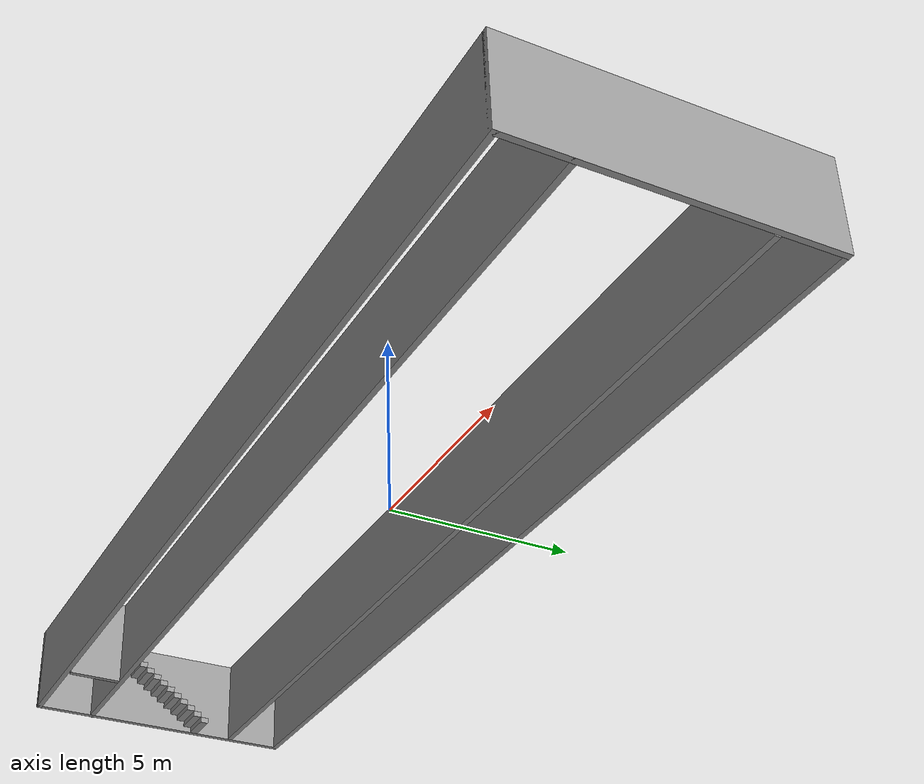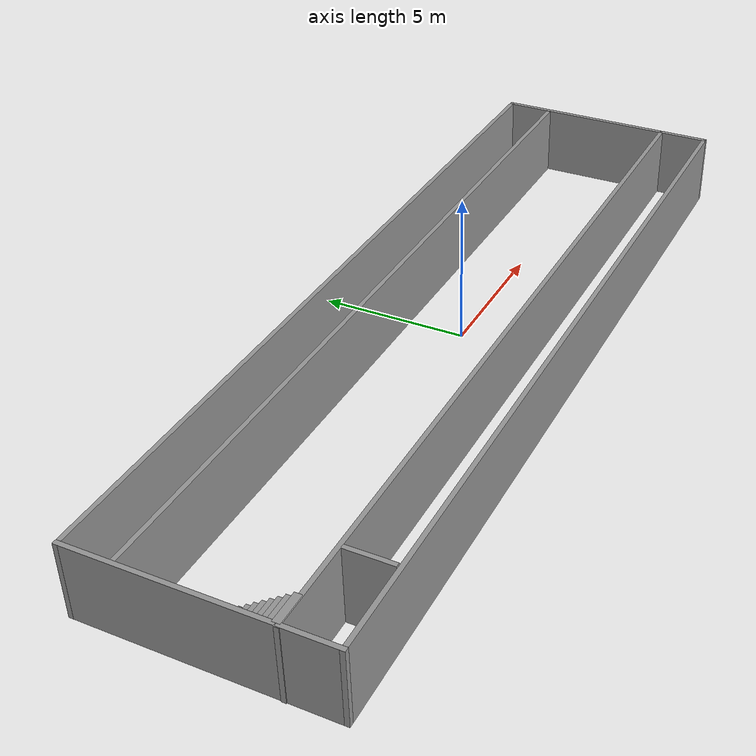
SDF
<?xml version='1.0'?>
<sdf version='1.7'>
  <model name='school_bone'>
    <pose>-1.46985 -0.354274 0 0 -0 0</pose>
    <link name='Stairs_0'>
      <visual name='Stairs_0_Visual_0'>
        <pose>-13.3985 1.08652 0.083333 0 -0 0</pose>
        <geometry>
          <box>
            <size>1 0.233333 0.166667</size>
          </box>
        </geometry>
        <material>
          <script>
            <uri>file://media/materials/scripts/gazebo.material</uri>
            <name>Gazebo/Grey</name>
          </script>
          <ambient>1 1 1 1</ambient>
        </material>
        <meta>
          <layer>0</layer>
        </meta>
      </visual>
      <collision name='Stairs_0_Collision_0'>
        <geometry>
          <box>
            <size>1 0.233333 0.166667</size>
          </box>
        </geometry>
        <pose>-13.3985 1.08652 0.083333 0 -0 0</pose>
      </collision>
      <visual name='Stairs_0_Visual_1'>
        <pose>-13.3985 0.853188 0.25 0 -0 0</pose>
        <geometry>
          <box>
            <size>1 0.233333 0.166667</size>
          </box>
        </geometry>
        <material>
          <script>
            <uri>file://media/materials/scripts/gazebo.material</uri>
            <name>Gazebo/Grey</name>
          </script>
          <ambient>1 1 1 1</ambient>
        </material>
        <meta>
          <layer>0</layer>
        </meta>
      </visual>
      <collision name='Stairs_0_Collision_1'>
        <geometry>
          <box>
            <size>1 0.233333 0.166667</size>
          </box>
        </geometry>
        <pose>-13.3985 0.853188 0.25 0 -0 0</pose>
      </collision>
      <visual name='Stairs_0_Visual_2'>
        <pose>-13.3985 0.619855 0.416667 0 -0 0</pose>
        <geometry>
          <box>
            <size>1 0.233333 0.166667</size>
          </box>
        </geometry>
        <material>
          <script>
            <uri>file://media/materials/scripts/gazebo.material</uri>
            <name>Gazebo/Grey</name>
          </script>
          <ambient>1 1 1 1</ambient>
        </material>
        <meta>
          <layer>0</layer>
        </meta>
      </visual>
      <collision name='Stairs_0_Collision_2'>
        <geometry>
          <box>
            <size>1 0.233333 0.166667</size>
          </box>
        </geometry>
        <pose>-13.3985 0.619855 0.416667 0 -0 0</pose>
      </collision>
      <visual name='Stairs_0_Visual_3'>
        <pose>-13.3985 0.386522 0.583333 0 -0 0</pose>
        <geometry>
          <box>
            <size>1 0.233333 0.166667</size>
          </box>
        </geometry>
        <material>
          <script>
            <uri>file://media/materials/scripts/gazebo.material</uri>
            <name>Gazebo/Grey</name>
          </script>
          <ambient>1 1 1 1</ambient>
        </material>
        <meta>
          <layer>0</layer>
        </meta>
      </visual>
      <collision name='Stairs_0_Collision_3'>
        <geometry>
          <box>
            <size>1 0.233333 0.166667</size>
          </box>
        </geometry>
        <pose>-13.3985 0.386522 0.583333 0 -0 0</pose>
      </collision>
      <visual name='Stairs_0_Visual_4'>
        <pose>-13.3985 0.153188 0.75 0 -0 0</pose>
        <geometry>
          <box>
            <size>1 0.233333 0.166667</size>
          </box>
        </geometry>
        <material>
          <script>
            <uri>file://media/materials/scripts/gazebo.material</uri>
            <name>Gazebo/Grey</name>
          </script>
          <ambient>1 1 1 1</ambient>
        </material>
        <meta>
          <layer>0</layer>
        </meta>
      </visual>
      <collision name='Stairs_0_Collision_4'>
        <geometry>
          <box>
            <size>1 0.233333 0.166667</size>
          </box>
        </geometry>
        <pose>-13.3985 0.153188 0.75 0 -0 0</pose>
      </collision>
      <visual name='Stairs_0_Visual_5'>
        <pose>-13.3985 -0.080145 0.916667 0 -0 0</pose>
        <geometry>
          <box>
            <size>1 0.233333 0.166667</size>
          </box>
        </geometry>
        <material>
          <script>
            <uri>file://media/materials/scripts/gazebo.material</uri>
            <name>Gazebo/Grey</name>
          </script>
          <ambient>1 1 1 1</ambient>
        </material>
        <meta>
          <layer>0</layer>
        </meta>
      </visual>
      <collision name='Stairs_0_Collision_5'>
        <geometry>
          <box>
            <size>1 0.233333 0.166667</size>
          </box>
        </geometry>
        <pose>-13.3985 -0.080145 0.916667 0 -0 0</pose>
      </collision>
      <visual name='Stairs_0_Visual_6'>
        <pose>-13.3985 -0.313478 1.08333 0 -0 0</pose>
        <geometry>
          <box>
            <size>1 0.233333 0.166667</size>
          </box>
        </geometry>
        <material>
          <script>
            <uri>file://media/materials/scripts/gazebo.material</uri>
            <name>Gazebo/Grey</name>
          </script>
          <ambient>1 1 1 1</ambient>
        </material>
        <meta>
          <layer>0</layer>
        </meta>
      </visual>
      <collision name='Stairs_0_Collision_6'>
        <geometry>
          <box>
            <size>1 0.233333 0.166667</size>
          </box>
        </geometry>
        <pose>-13.3985 -0.313478 1.08333 0 -0 0</pose>
      </collision>
      <visual name='Stairs_0_Visual_7'>
        <pose>-13.3985 -0.546812 1.25 0 -0 0</pose>
        <geometry>
          <box>
            <size>1 0.233333 0.166667</size>
          </box>
        </geometry>
        <material>
          <script>
            <uri>file://media/materials/scripts/gazebo.material</uri>
            <name>Gazebo/Grey</name>
          </script>
          <ambient>1 1 1 1</ambient>
        </material>
        <meta>
          <layer>0</layer>
        </meta>
      </visual>
      <collision name='Stairs_0_Collision_7'>
        <geometry>
          <box>
            <size>1 0.233333 0.166667</size>
          </box>
        </geometry>
        <pose>-13.3985 -0.546812 1.25 0 -0 0</pose>
      </collision>
      <visual name='Stairs_0_Visual_8'>
        <pose>-13.3985 -0.780145 1.41667 0 -0 0</pose>
        <geometry>
          <box>
            <size>1 0.233333 0.166667</size>
          </box>
        </geometry>
        <material>
          <script>
            <uri>file://media/materials/scripts/gazebo.material</uri>
            <name>Gazebo/Grey</name>
          </script>
          <ambient>1 1 1 1</ambient>
        </material>
        <meta>
          <layer>0</layer>
        </meta>
      </visual>
      <collision name='Stairs_0_Collision_8'>
        <geometry>
          <box>
            <size>1 0.233333 0.166667</size>
          </box>
        </geometry>
        <pose>-13.3985 -0.780145 1.41667 0 -0 0</pose>
      </collision>
      <visual name='Stairs_0_Visual_9'>
        <pose>-13.3985 -1.01348 1.58333 0 -0 0</pose>
        <geometry>
          <box>
            <size>1 0.233333 0.166667</size>
          </box>
        </geometry>
        <material>
          <script>
            <uri>file://media/materials/scripts/gazebo.material</uri>
            <name>Gazebo/Grey</name>
          </script>
          <ambient>1 1 1 1</ambient>
        </material>
        <meta>
          <layer>0</layer>
        </meta>
      </visual>
      <collision name='Stairs_0_Collision_9'>
        <geometry>
          <box>
            <size>1 0.233333 0.166667</size>
          </box>
        </geometry>
        <pose>-13.3985 -1.01348 1.58333 0 -0 0</pose>
      </collision>
      <visual name='Stairs_0_Visual_10'>
        <pose>-13.3985 -1.24681 1.75 0 -0 0</pose>
        <geometry>
          <box>
            <size>1 0.233333 0.166667</size>
          </box>
        </geometry>
        <material>
          <script>
            <uri>file://media/materials/scripts/gazebo.material</uri>
            <name>Gazebo/Grey</name>
          </script>
          <ambient>1 1 1 1</ambient>
        </material>
        <meta>
          <layer>0</layer>
        </meta>
      </visual>
      <collision name='Stairs_0_Collision_10'>
        <geometry>
          <box>
            <size>1 0.233333 0.166667</size>
          </box>
        </geometry>
        <pose>-13.3985 -1.24681 1.75 0 -0 0</pose>
      </collision>
      <visual name='Stairs_0_Visual_11'>
        <pose>-13.3985 -1.48015 1.91667 0 -0 0</pose>
        <geometry>
          <box>
            <size>1 0.233333 0.166667</size>
          </box>
        </geometry>
        <material>
          <script>
            <uri>file://media/materials/scripts/gazebo.material</uri>
            <name>Gazebo/Grey</name>
          </script>
          <ambient>1 1 1 1</ambient>
        </material>
        <meta>
          <layer>0</layer>
        </meta>
      </visual>
      <collision name='Stairs_0_Collision_11'>
        <geometry>
          <box>
            <size>1 0.233333 0.166667</size>
          </box>
        </geometry>
        <pose>-13.3985 -1.48015 1.91667 0 -0 0</pose>
      </collision>
      <visual name='Stairs_0_Visual_12'>
        <pose>-13.3985 -1.71348 2.08333 0 -0 0</pose>
        <geometry>
          <box>
            <size>1 0.233333 0.166667</size>
          </box>
        </geometry>
        <material>
          <script>
            <uri>file://media/materials/scripts/gazebo.material</uri>
            <name>Gazebo/Grey</name>
          </script>
          <ambient>1 1 1 1</ambient>
        </material>
        <meta>
          <layer>0</layer>
        </meta>
      </visual>
      <collision name='Stairs_0_Collision_12'>
        <geometry>
          <box>
            <size>1 0.233333 0.166667</size>
          </box>
        </geometry>
        <pose>-13.3985 -1.71348 2.08333 0 -0 0</pose>
      </collision>
      <visual name='Stairs_0_Visual_13'>
        <pose>-13.3985 -1.94681 2.25 0 -0 0</pose>
        <geometry>
          <box>
            <size>1 0.233333 0.166667</size>
          </box>
        </geometry>
        <material>
          <script>
            <uri>file://media/materials/scripts/gazebo.material</uri>
            <name>Gazebo/Grey</name>
          </script>
          <ambient>1 1 1 1</ambient>
        </material>
        <meta>
          <layer>0</layer>
        </meta>
      </visual>
      <collision name='Stairs_0_Collision_13'>
        <geometry>
          <box>
            <size>1 0.233333 0.166667</size>
          </box>
        </geometry>
        <pose>-13.3985 -1.94681 2.25 0 -0 0</pose>
      </collision>
      <visual name='Stairs_0_Visual_14'>
        <pose>-13.3985 -2.18014 2.41667 0 -0 0</pose>
        <geometry>
          <box>
            <size>1 0.233333 0.166667</size>
          </box>
        </geometry>
        <material>
          <script>
            <uri>file://media/materials/scripts/gazebo.material</uri>
            <name>Gazebo/Grey</name>
          </script>
          <ambient>1 1 1 1</ambient>
        </material>
        <meta>
          <layer>0</layer>
        </meta>
      </visual>
      <collision name='Stairs_0_Collision_14'>
        <geometry>
          <box>
            <size>1 0.233333 0.166667</size>
          </box>
        </geometry>
        <pose>-13.3985 -2.18014 2.41667 0 -0 0</pose>
      </collision>
    </link>
    <link name='Wall_49'>
      <collision name='Wall_49_Collision'>
        <geometry>
          <box>
            <size>8 0.15 2.5</size>
          </box>
        </geometry>
        <pose>0 0 1.25 0 -0 0</pose>
      </collision>
      <visual name='Wall_49_Visual'>
        <pose>0 0 1.25 0 -0 0</pose>
        <geometry>
          <box>
            <size>8 0.15 2.5</size>
          </box>
        </geometry>
        <material>
          <script>
            <uri>file://media/materials/scripts/gazebo.material</uri>
            <name>Gazebo/Grey</name>
          </script>
          <ambient>1 1 1 1</ambient>
        </material>
        <meta>
          <layer>0</layer>
        </meta>
      </visual>
      <pose>-13.9134 -0 0 0 -0 -1.5708</pose>
    </link>
    <link name='Wall_50'>
      <collision name='Wall_50_Collision'>
        <geometry>
          <box>
            <size>28 0.15 2.5</size>
          </box>
        </geometry>
        <pose>0 0 1.25 0 -0 0</pose>
      </collision>
      <visual name='Wall_50_Visual'>
        <pose>0 0 1.25 0 -0 0</pose>
        <geometry>
          <box>
            <size>28 0.15 2.5</size>
          </box>
        </geometry>
        <material>
          <script>
            <uri>file://media/materials/scripts/gazebo.material</uri>
            <name>Gazebo/Grey</name>
          </script>
          <ambient>1 1 1 1</ambient>
        </material>
        <meta>
          <layer>0</layer>
        </meta>
      </visual>
      <pose>0.011565 -3.925 0 0 -0 0</pose>
    </link>
    <link name='Wall_51'>
      <collision name='Wall_51_Collision'>
        <geometry>
          <box>
            <size>8 0.15 2.5</size>
          </box>
        </geometry>
        <pose>0 0 1.25 0 -0 0</pose>
      </collision>
      <visual name='Wall_51_Visual'>
        <pose>0 0 1.25 0 -0 0</pose>
        <geometry>
          <box>
            <size>8 0.15 2.5</size>
          </box>
        </geometry>
        <material>
          <script>
            <uri>file://media/materials/scripts/gazebo.material</uri>
            <name>Gazebo/Grey</name>
          </script>
          <ambient>1 1 1 1</ambient>
        </material>
        <meta>
          <layer>0</layer>
        </meta>
      </visual>
      <pose>13.9366 -0 0 0 -0 1.5708</pose>
    </link>
    <link name='Wall_52'>
      <collision name='Wall_52_Collision'>
        <geometry>
          <box>
            <size>28 0.15 2.5</size>
          </box>
        </geometry>
        <pose>0 0 1.25 0 -0 0</pose>
      </collision>
      <visual name='Wall_52_Visual'>
        <pose>0 0 1.25 0 -0 0</pose>
        <geometry>
          <box>
            <size>28 0.15 2.5</size>
          </box>
        </geometry>
        <material>
          <script>
            <uri>file://media/materials/scripts/gazebo.material</uri>
            <name>Gazebo/Grey</name>
          </script>
          <ambient>1 1 1 1</ambient>
        </material>
        <meta>
          <layer>0</layer>
        </meta>
      </visual>
      <pose>0.011565 3.925 0 0 -0 3.14159</pose>
    </link>
    <link name='Wall_54'>
      <collision name='Wall_54_Collision'>
        <geometry>
          <box>
            <size>28 0.15 2.5</size>
          </box>
        </geometry>
        <pose>0 0 1.25 0 -0 0</pose>
      </collision>
      <visual name='Wall_54_Visual'>
        <pose>0 0 1.25 0 -0 0</pose>
        <geometry>
          <box>
            <size>28 0.15 2.5</size>
          </box>
        </geometry>
        <material>
          <script>
            <uri>file://media/materials/scripts/gazebo.material</uri>
            <name>Gazebo/Grey</name>
          </script>
          <ambient>1 1 1 1</ambient>
        </material>
        <meta>
          <layer>0</layer>
        </meta>
      </visual>
      <pose>-0.011566 -2.25087 0 0 -0 0</pose>
    </link>
    <link name='Wall_56'>
      <collision name='Wall_56_Collision'>
        <geometry>
          <box>
            <size>27.75 0.15 2.5</size>
          </box>
        </geometry>
        <pose>0 0 1.25 0 -0 0</pose>
      </collision>
      <visual name='Wall_56_Visual'>
        <pose>0 0 1.25 0 -0 0</pose>
        <geometry>
          <box>
            <size>27.75 0.15 2.5</size>
          </box>
        </geometry>
        <material>
          <script>
            <uri>file://media/materials/scripts/gazebo.material</uri>
            <name>Gazebo/Grey</name>
          </script>
          <ambient>1 1 1 1</ambient>
        </material>
        <meta>
          <layer>0</layer>
        </meta>
      </visual>
      <pose>-0.044043 2.32899 0 0 -0 0</pose>
    </link>
    <link name='Wall_58'>
      <collision name='Wall_58_Collision'>
        <geometry>
          <box>
            <size>1.5 0.15 2.5</size>
          </box>
        </geometry>
        <pose>0 0 1.25 0 -0 0</pose>
      </collision>
      <visual name='Wall_58_Visual'>
        <pose>0 0 1.25 0 -0 0</pose>
        <geometry>
          <box>
            <size>1.5 0.15 2.5</size>
          </box>
        </geometry>
        <material>
          <script>
            <uri>file://media/materials/scripts/gazebo.material</uri>
            <name>Gazebo/Grey</name>
          </script>
          <ambient>1 1 1 1</ambient>
        </material>
        <meta>
          <layer>0</layer>
        </meta>
      </visual>
      <pose>-11.1146 -3.06466 0 0 -0 -1.5708</pose>
    </link>
    <static>1</static>
  </model>
</sdf>
